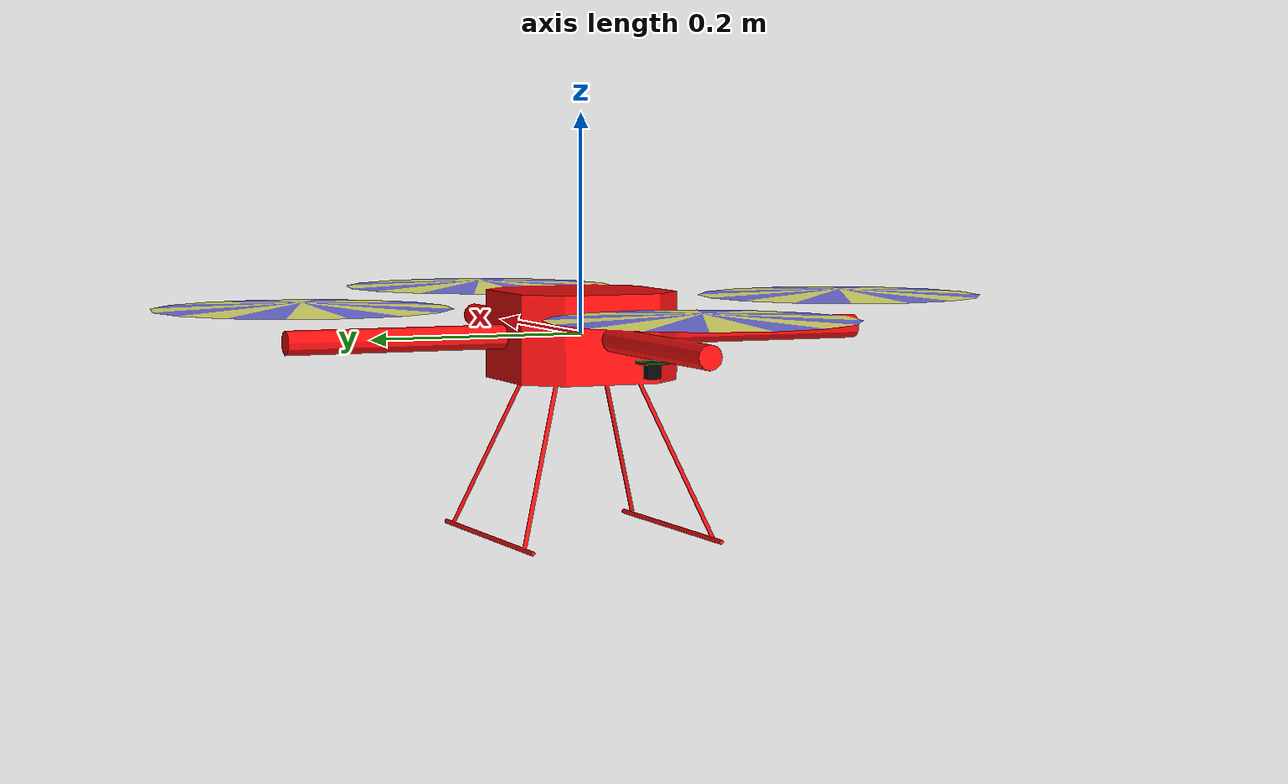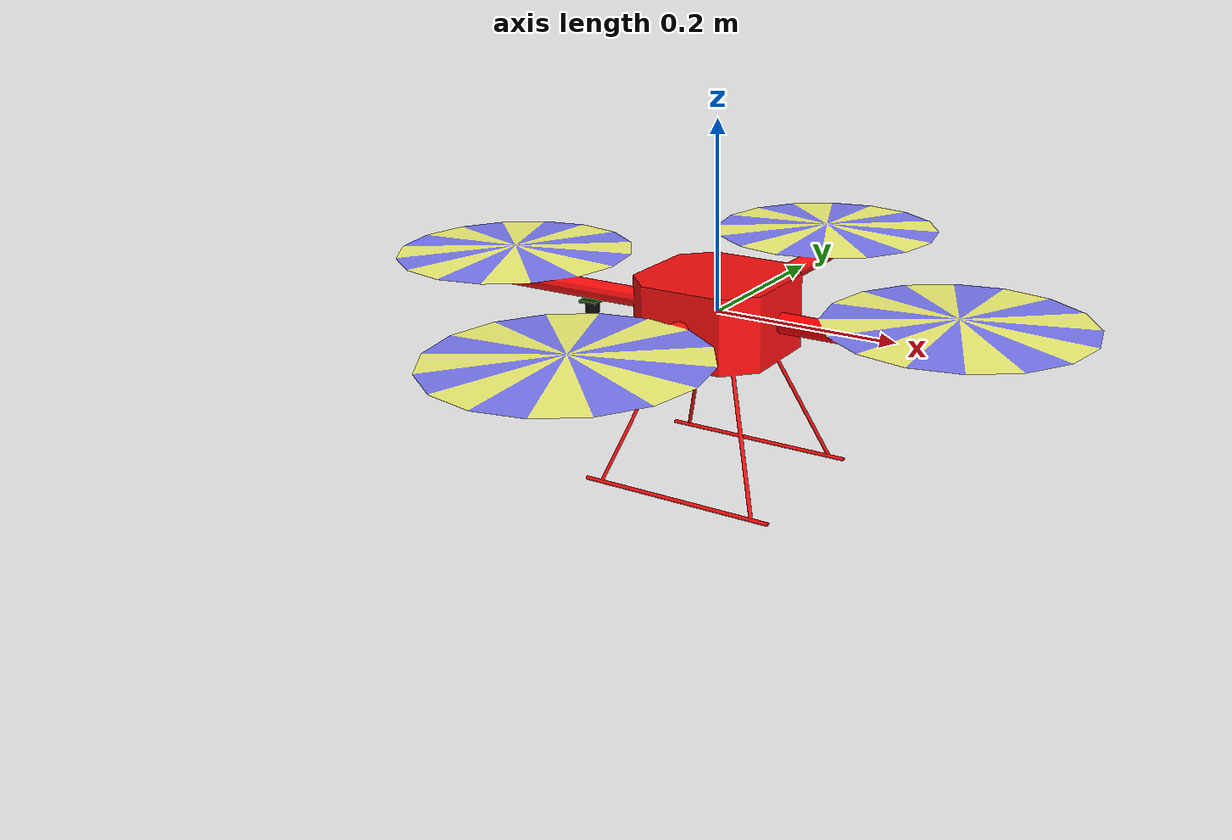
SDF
<?xml version='1.0'?>
<sdf version='1.6'>
  <model name='drone'>
    <link name='base_link'>
      <pose frame=''>0 0 0 0 -0 0</pose>
      <inertial>
        <pose frame=''>-0.000108 0 -8e-06 0 -0 0</pose>
        <mass>1.478</mass>
        <inertia>
          <ixx>0.0115202</ixx>
          <ixy>0</ixy>
          <ixz>-1.9187e-06</ixz>
          <iyy>0.0115457</iyy>
          <iyz>0</iyz>
          <izz>0.0218256</izz>
        </inertia>
      </inertial>
      <gravity>1</gravity>
      <velocity_decay/>
      <sensor name='sonar' type='ray'>
        <always_on>1</always_on>
        <update_rate>10</update_rate>
        <visualize>0</visualize>
        <ray>
          <scan>
            <horizontal>
              <samples>3</samples>
              <resolution>1</resolution>
              <min_angle>-0.349066</min_angle>
              <max_angle>0.349066</max_angle>
            </horizontal>
            <vertical>
              <samples>3</samples>
              <resolution>1</resolution>
              <min_angle>-0.349066</min_angle>
              <max_angle>0.349066</max_angle>
            </vertical>
          </scan>
          <range>
            <min>0.03</min>
            <max>3</max>
            <resolution>0.01</resolution>
          </range>
        </ray>
        <plugin name='gazebo_ros_sonar_controller' filename='libhector_gazebo_ros_sonar.so'>
          <gaussianNoise>0.005</gaussianNoise>
          <topicName>sonar_height</topicName>
          <frameId>sonar_link</frameId>
          <robotNamespace>/drone2/</robotNamespace>
        </plugin>
        <pose frame=''>-0.16 0 -0.012 3.14159 1.57079 3.14159</pose>
      </sensor>
      <self_collide>0</self_collide>
      <enable_wind>0</enable_wind>
      <kinematic>0</kinematic>
      <visual name='base_link_visual'>
        <pose frame=''>0 0 0 0 -0 0</pose>
        <geometry>
          <mesh>
            <scale>1 1 1</scale>
            <uri>/home/smc/catkin_ws/src/hector_quadrotor/hector_quadrotor_description/meshes/quadrotor/quadrotor_base.dae</uri>
          </mesh>
        </geometry>
        <material>
          <shader type='pixel'/>
        </material>
        <transparency>0</transparency>
        <cast_shadows>1</cast_shadows>
      </visual>
      <visual name='base_link_fixed_joint_lump__sonar_link_visual_1'>
        <pose frame=''>-0.16 0 -0.012 3.14159 1.57079 3.14159</pose>
        <geometry>
          <mesh>
            <scale>1 1 1</scale>
            <uri>/opt/ros/kinetic/share/hector_sensors_description/meshes/sonar_sensor/max_sonar_ez4.dae</uri>
          </mesh>
        </geometry>
        <material>
          <script>
            <uri>__default__</uri>
            <name>__default__</name>
          </script>
          <shader type='pixel'/>
        </material>
        <transparency>0</transparency>
        <cast_shadows>1</cast_shadows>
      </visual>
      <collision name='base_link_collision'>
        <laser_retro>0</laser_retro>
        <max_contacts>10</max_contacts>
        <pose frame=''>0 0 0 0 -0 0</pose>
        <geometry>
          <mesh>
            <uri>/home/smc/catkin_ws/src/hector_quadrotor/hector_quadrotor_description/meshes/quadrotor/quadrotor_base.stl</uri>
            <scale>1 1 1</scale>
          </mesh>
        </geometry>
        <surface>
          <friction>
            <ode>
              <mu>1</mu>
              <mu2>1</mu2>
              <fdir1>0 0 0</fdir1>
              <slip1>0</slip1>
              <slip2>0</slip2>
            </ode>
            <torsional>
              <coefficient>1</coefficient>
              <patch_radius>0</patch_radius>
              <surface_radius>0</surface_radius>
              <use_patch_radius>1</use_patch_radius>
              <ode>
                <slip>0</slip>
              </ode>
            </torsional>
          </friction>
          <bounce>
            <restitution_coefficient>0</restitution_coefficient>
            <threshold>1e+06</threshold>
          </bounce>
          <contact>
            <collide_without_contact>0</collide_without_contact>
            <collide_without_contact_bitmask>1</collide_without_contact_bitmask>
            <collide_bitmask>1</collide_bitmask>
            <ode>
              <soft_cfm>0</soft_cfm>
              <soft_erp>0.2</soft_erp>
              <kp>1e+13</kp>
              <kd>1</kd>
              <max_vel>0.01</max_vel>
              <min_depth>0</min_depth>
            </ode>
            <bullet>
              <split_impulse>1</split_impulse>
              <split_impulse_penetration_threshold>-0.01</split_impulse_penetration_threshold>
              <soft_cfm>0</soft_cfm>
              <soft_erp>0.2</soft_erp>
              <kp>1e+13</kp>
              <kd>1</kd>
            </bullet>
          </contact>
        </surface>
      </collision>
      <collision name='base_link_fixed_joint_lump__sonar_link_collision_1'>
        <laser_retro>0</laser_retro>
        <max_contacts>10</max_contacts>
        <pose frame=''>-0.16 0 -0.012 3.14159 1.57079 3.14159</pose>
        <geometry>
          <box>
            <size>0.01 0.01 0.01</size>
          </box>
        </geometry>
        <surface>
          <friction>
            <ode>
              <mu>1</mu>
              <mu2>1</mu2>
              <fdir1>0 0 0</fdir1>
              <slip1>0</slip1>
              <slip2>0</slip2>
            </ode>
            <torsional>
              <coefficient>1</coefficient>
              <patch_radius>0</patch_radius>
              <surface_radius>0</surface_radius>
              <use_patch_radius>1</use_patch_radius>
              <ode>
                <slip>0</slip>
              </ode>
            </torsional>
          </friction>
          <bounce>
            <restitution_coefficient>0</restitution_coefficient>
            <threshold>1e+06</threshold>
          </bounce>
          <contact>
            <collide_without_contact>0</collide_without_contact>
            <collide_without_contact_bitmask>1</collide_without_contact_bitmask>
            <collide_bitmask>1</collide_bitmask>
            <ode>
              <soft_cfm>0</soft_cfm>
              <soft_erp>0.2</soft_erp>
              <kp>1e+13</kp>
              <kd>1</kd>
              <max_vel>0.01</max_vel>
              <min_depth>0</min_depth>
            </ode>
            <bullet>
              <split_impulse>1</split_impulse>
              <split_impulse_penetration_threshold>-0.01</split_impulse_penetration_threshold>
              <soft_cfm>0</soft_cfm>
              <soft_erp>0.2</soft_erp>
              <kp>1e+13</kp>
              <kd>1</kd>
            </bullet>
          </contact>
        </surface>
      </collision>
    </link>
    <static>1</static>
    <allow_auto_disable>1</allow_auto_disable>
  </model>
</sdf>
